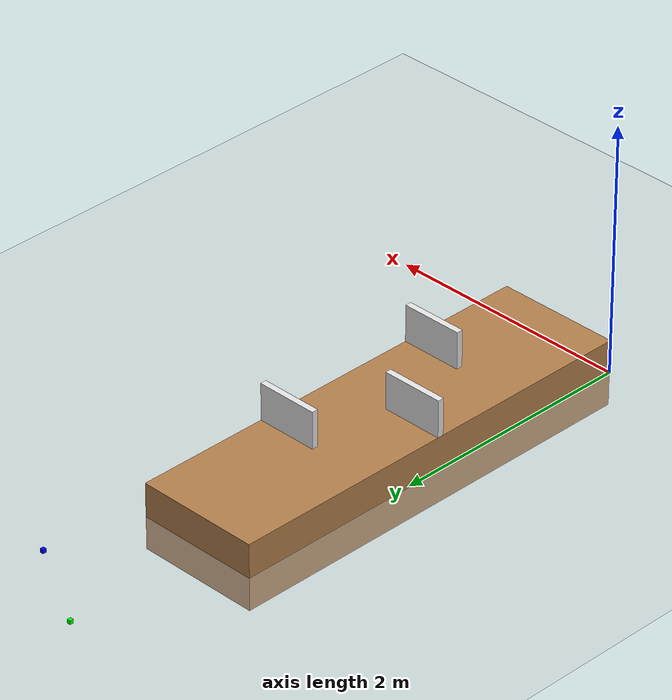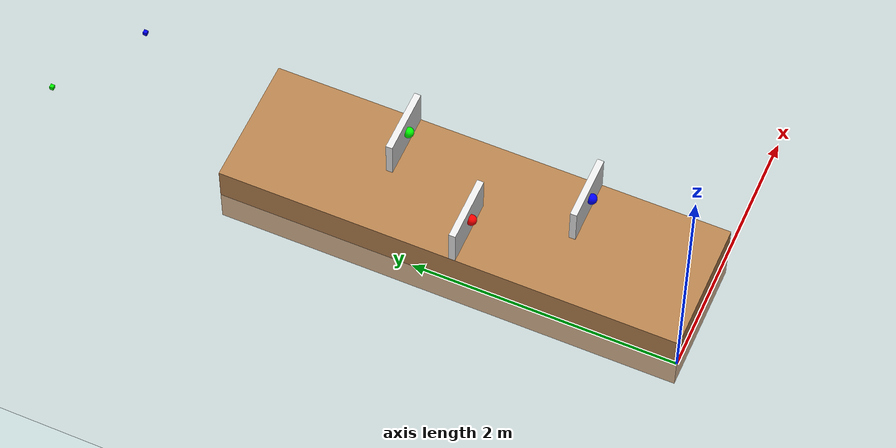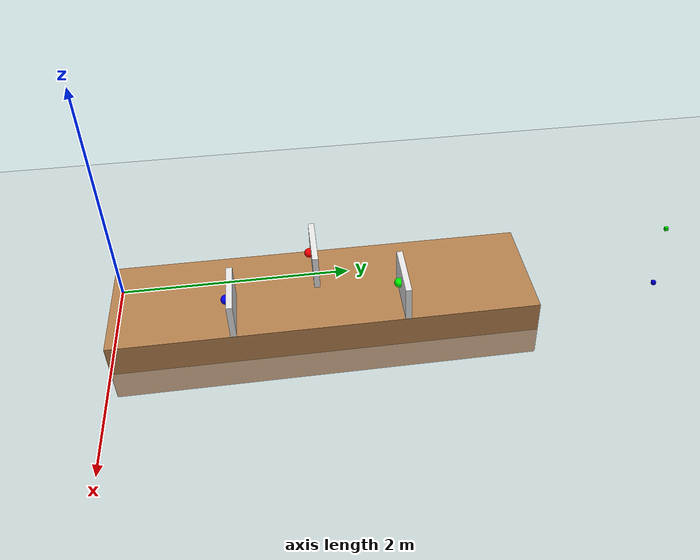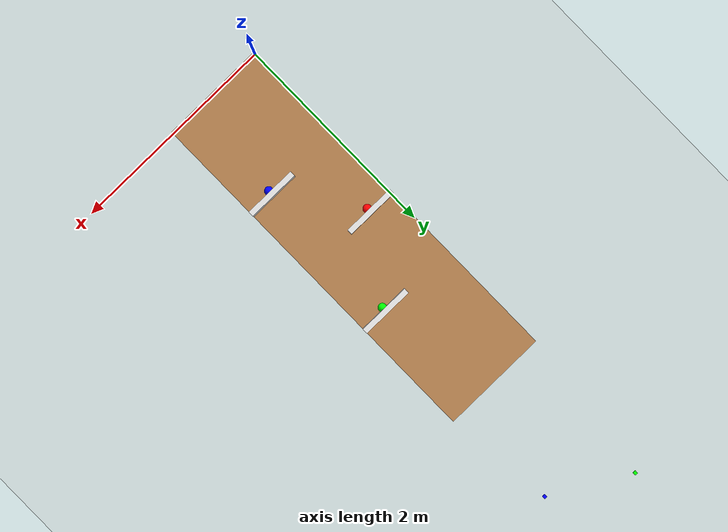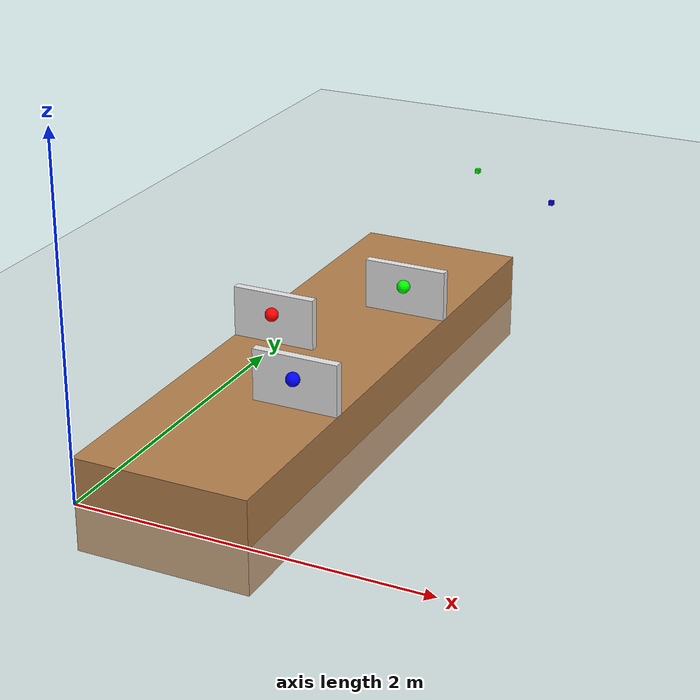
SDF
<sdf version="1.6">
 <world name="default">
  <model name="ground_plane">
   <static>1</static>
   <link name="link">
    <collision name="collision">
     <geometry><plane><normal>0 0 1</normal><size>100 100</size></plane></geometry>
     <surface><friction><ode><mu>100</mu><mu2>50</mu2></ode></friction></surface>
    </collision>
    <visual name="visual">
     <cast_shadows>0</cast_shadows>
     <geometry><plane><normal>0 0 1</normal><size>100 100</size></plane></geometry>
     <material>
      <script><uri>file://media/materials/scripts/gazebo.material</uri><name>Gazebo/Grey</name></script>
     </material>
    </visual>
   </link>
  </model>
  <model name="runway">
   <link name="link">
    <inertial>
     <mass>1</mass>
     <inertia>
      <ixx>0.166667</ixx>
      <ixy>0</ixy>
      <ixz>0</ixz>
      <iyy>0.166667</iyy>
      <iyz>0</iyz>
      <izz>0.166667</izz>
     </inertia>
    </inertial>
    <visual name="ModelPreview_1::link::visual_8">
     <geometry><box><size>1.0 3.5 0.535721</size></box></geometry>
     <material>
      <script>
       <uri>model://wood/materials/scripts</uri>
       <uri>model://wood/materials/textures</uri>
       <name>wood</name>
      </script>
      <ambient>0.855 0.765 0.6 1</ambient>
      <diffuse>0.855 0.765 0.6 1</diffuse>
      <specular>1.0 0.95 0.85 1</specular>
      <emissive>0 0 0 1</emissive>
      <shader type="vertex"><normal_map>__default__</normal_map></shader>
     </material>
    </visual>
    <collision name="collision">
     <geometry><box><size>1.0 3.5 0.535721</size></box></geometry>
     <surface>
      <friction>
       <ode><mu>1</mu><mu2>1</mu2><fdir1>0 0 0</fdir1><slip1>0</slip1><slip2>0</slip2></ode>
       <torsional>
        <coefficient>1</coefficient>
        <patch_radius>0</patch_radius>
        <surface_radius>0</surface_radius>
        <use_patch_radius>1</use_patch_radius>
        <ode><slip>0</slip></ode>
       </torsional>
      </friction>
      <bounce><restitution_coefficient>0</restitution_coefficient><threshold>1e+06</threshold></bounce>
      <contact>
       <collide_without_contact>0</collide_without_contact>
       <collide_without_contact_bitmask>1</collide_without_contact_bitmask>
       <collide_bitmask>1</collide_bitmask>
       <ode>
        <soft_cfm>0</soft_cfm>
        <soft_erp>0.2</soft_erp>
        <kp>1e+13</kp>
        <kd>1</kd>
        <max_vel>0.01</max_vel>
        <min_depth>0</min_depth>
       </ode>
       <bullet>
        <split_impulse>1</split_impulse>
        <split_impulse_penetration_threshold>-0.01</split_impulse_penetration_threshold>
        <soft_cfm>0</soft_cfm>
        <soft_erp>0.2</soft_erp>
        <kp>1e+13</kp>
        <kd>1</kd>
       </bullet>
      </contact>
     </surface>
    </collision>
   </link>
   <static>1</static>
   <pose>0.5 1.75 0 0 -0 0</pose>
  </model>
  <model name="wall">
   <link name="link">
    <inertial>
     <mass>1</mass>
     <inertia>
      <ixx>0.166667</ixx>
      <ixy>0</ixy>
      <ixz>0</ixz>
      <iyy>0.166667</iyy>
      <iyz>0</iyz>
      <izz>0.166667</izz>
     </inertia>
    </inertial>
    <visual name="visual">
     <geometry><box><size>0.50 0.05 0.3</size></box></geometry>
     <material>
      <script>
       <uri>model://wall/materials/scripts</uri>
       <uri>model://wall/materials/textures</uri>
       <name>wall</name>
      </script>
      <ambient>0.9 0.9 0.9 1</ambient>
      <diffuse>0.9 0.9 0.9 1</diffuse>
      <specular>0.5 0.5 0.5 1</specular>
      <emissive>0 0 0 1</emissive>
      <shader type="vertex"><normal_map>__default__</normal_map></shader>
     </material>
    </visual>
    <collision name="collision">
     <geometry><box><size>0.50 0.05 0.3</size></box></geometry>
     <surface>
      <friction>
       <ode><mu>1</mu><mu2>1</mu2><fdir1>0 0 0</fdir1><slip1>0</slip1><slip2>0</slip2></ode>
       <torsional>
        <coefficient>1</coefficient>
        <patch_radius>0</patch_radius>
        <surface_radius>0</surface_radius>
        <use_patch_radius>1</use_patch_radius>
        <ode><slip>0</slip></ode>
       </torsional>
      </friction>
      <bounce><restitution_coefficient>0</restitution_coefficient><threshold>1e+06</threshold></bounce>
      <contact>
       <collide_without_contact>0</collide_without_contact>
       <collide_without_contact_bitmask>1</collide_without_contact_bitmask>
       <collide_bitmask>1</collide_bitmask>
       <ode>
        <soft_cfm>0</soft_cfm>
        <soft_erp>0.2</soft_erp>
        <kp>1e+13</kp>
        <kd>1</kd>
        <max_vel>0.01</max_vel>
        <min_depth>0</min_depth>
       </ode>
       <bullet>
        <split_impulse>1</split_impulse>
        <split_impulse_penetration_threshold>-0.01</split_impulse_penetration_threshold>
        <soft_cfm>0</soft_cfm>
        <soft_erp>0.2</soft_erp>
        <kp>1e+13</kp>
        <kd>1</kd>
       </bullet>
      </contact>
     </surface>
    </collision>
   </link>
   <static>1</static>
   <pose>0.75 1.0 0.4184 0 -0 0</pose>
  </model>
  <model name="wall_0">
   <link name="link">
    <inertial>
     <mass>1</mass>
     <inertia>
      <ixx>0.166667</ixx>
      <ixy>0</ixy>
      <ixz>0</ixz>
      <iyy>0.166667</iyy>
      <iyz>0</iyz>
      <izz>0.166667</izz>
     </inertia>
    </inertial>
    <visual name="visual">
     <geometry><box><size>0.50 0.05 0.3</size></box></geometry>
     <material>
      <script>
       <uri>model://wall/materials/scripts</uri>
       <uri>model://wall/materials/textures</uri>
       <name>wall</name>
      </script>
      <ambient>0.9 0.9 0.9 1</ambient>
      <diffuse>0.9 0.9 0.9 1</diffuse>
      <specular>0.5 0.5 0.5 1</specular>
      <emissive>0 0 0 1</emissive>
      <shader type="vertex"><normal_map>__default__</normal_map></shader>
     </material>
    </visual>
    <collision name="collision">
     <geometry><box><size>0.50 0.05 0.3</size></box></geometry>
     <surface>
      <friction>
       <ode><mu>1</mu><mu2>1</mu2><fdir1>0 0 0</fdir1><slip1>0</slip1><slip2>0</slip2></ode>
       <torsional>
        <coefficient>1</coefficient>
        <patch_radius>0</patch_radius>
        <surface_radius>0</surface_radius>
        <use_patch_radius>1</use_patch_radius>
        <ode><slip>0</slip></ode>
       </torsional>
      </friction>
      <bounce><restitution_coefficient>0</restitution_coefficient><threshold>1e+06</threshold></bounce>
      <contact>
       <collide_without_contact>0</collide_without_contact>
       <collide_without_contact_bitmask>1</collide_without_contact_bitmask>
       <collide_bitmask>1</collide_bitmask>
       <ode>
        <soft_cfm>0</soft_cfm>
        <soft_erp>0.2</soft_erp>
        <kp>1e+13</kp>
        <kd>1</kd>
        <max_vel>0.01</max_vel>
        <min_depth>0</min_depth>
       </ode>
       <bullet>
        <split_impulse>1</split_impulse>
        <split_impulse_penetration_threshold>-0.01</split_impulse_penetration_threshold>
        <soft_cfm>0</soft_cfm>
        <soft_erp>0.2</soft_erp>
        <kp>1e+13</kp>
        <kd>1</kd>
       </bullet>
      </contact>
     </surface>
    </collision>
   </link>
   <static>1</static>
   <pose>0.25 1.7 0.4184 0 -0 0</pose>
  </model>
  <model name="wall_1">
   <link name="link">
    <inertial>
     <mass>1</mass>
     <inertia>
      <ixx>0.166667</ixx>
      <ixy>0</ixy>
      <ixz>0</ixz>
      <iyy>0.166667</iyy>
      <iyz>0</iyz>
      <izz>0.166667</izz>
     </inertia>
    </inertial>
    <visual name="visual">
     <geometry><box><size>0.50 0.05 0.3</size></box></geometry>
     <material>
      <script>
       <uri>model://wall/materials/scripts</uri>
       <uri>model://wall/materials/textures</uri>
       <name>wall</name>
      </script>
      <ambient>0.9 0.9 0.9 1</ambient>
      <diffuse>0.9 0.9 0.9 1</diffuse>
      <specular>0.5 0.5 0.5 1</specular>
      <emissive>0 0 0 1</emissive>
      <shader type="vertex"><normal_map>__default__</normal_map></shader>
     </material>
    </visual>
    <collision name="collision">
     <geometry><box><size>0.50 0.05 0.3</size></box></geometry>
     <surface>
      <friction>
       <ode><mu>1</mu><mu2>1</mu2><fdir1>0 0 0</fdir1><slip1>0</slip1><slip2>0</slip2></ode>
       <torsional>
        <coefficient>1</coefficient>
        <patch_radius>0</patch_radius>
        <surface_radius>0</surface_radius>
        <use_patch_radius>1</use_patch_radius>
        <ode><slip>0</slip></ode>
       </torsional>
      </friction>
      <bounce><restitution_coefficient>0</restitution_coefficient><threshold>1e+06</threshold></bounce>
      <contact>
       <collide_without_contact>0</collide_without_contact>
       <collide_without_contact_bitmask>1</collide_without_contact_bitmask>
       <collide_bitmask>1</collide_bitmask>
       <ode>
        <soft_cfm>0</soft_cfm>
        <soft_erp>0.2</soft_erp>
        <kp>1e+13</kp>
        <kd>1</kd>
        <max_vel>0.01</max_vel>
        <min_depth>0</min_depth>
       </ode>
       <bullet>
        <split_impulse>1</split_impulse>
        <split_impulse_penetration_threshold>-0.01</split_impulse_penetration_threshold>
        <soft_cfm>0</soft_cfm>
        <soft_erp>0.2</soft_erp>
        <kp>1e+13</kp>
        <kd>1</kd>
       </bullet>
      </contact>
     </surface>
    </collision>
   </link>
   <static>1</static>
   <pose>0.75 2.4 0.4184 0 -0 0</pose>
  </model>
  <model name="red_ballon">
   <link name="link">
    <inertial>
     <mass>1</mass>
     <inertia><ixx>0.1</ixx><ixy>0</ixy><ixz>0</ixz><iyy>0.1</iyy><iyz>0</iyz><izz>0.1</izz></inertia>
    </inertial>
    <visual name="visual">
     <geometry><sphere><radius>0.04</radius></sphere></geometry>
     <material>
      <script><name>Gazebo/Grey</name><uri>file://media/materials/scripts/gazebo.material</uri></script>
      <ambient>0.9 0.4 0.2 1</ambient>
      <diffuse>1 0 0 1</diffuse>
      <specular>0.9 0.8 0.7 1</specular>
      <emissive>0 0 0 1</emissive>
      <shader type="vertex"><normal_map>__default__</normal_map></shader>
     </material>
    </visual>
    <collision name="collision">
     <geometry><sphere><radius>0.04</radius></sphere></geometry>
     <surface>
      <friction>
       <ode><mu>1</mu><mu2>1</mu2><fdir1>0 0 0</fdir1><slip1>0</slip1><slip2>0</slip2></ode>
       <torsional>
        <coefficient>1</coefficient>
        <patch_radius>0</patch_radius>
        <surface_radius>0</surface_radius>
        <use_patch_radius>1</use_patch_radius>
        <ode><slip>0</slip></ode>
       </torsional>
      </friction>
      <bounce><restitution_coefficient>0</restitution_coefficient><threshold>1e+06</threshold></bounce>
      <contact>
       <collide_without_contact>0</collide_without_contact>
       <collide_without_contact_bitmask>1</collide_without_contact_bitmask>
       <collide_bitmask>1</collide_bitmask>
       <ode>
        <soft_cfm>0</soft_cfm>
        <soft_erp>0.2</soft_erp>
        <kp>1e+13</kp>
        <kd>1</kd>
        <max_vel>0.01</max_vel>
        <min_depth>0</min_depth>
       </ode>
       <bullet>
        <split_impulse>1</split_impulse>
        <split_impulse_penetration_threshold>-0.01</split_impulse_penetration_threshold>
        <soft_cfm>0</soft_cfm>
        <soft_erp>0.2</soft_erp>
        <kp>1e+13</kp>
        <kd>1</kd>
       </bullet>
      </contact>
     </surface>
    </collision>
   </link>
   <static>1</static>
   <pose>0.25 1.66 0.446193 0 -0 0</pose>
  </model>
  <model name="green_ballon">
   <link name="link">
    <inertial>
     <mass>1</mass>
     <inertia><ixx>0.1</ixx><ixy>0</ixy><ixz>0</ixz><iyy>0.1</iyy><iyz>0</iyz><izz>0.1</izz></inertia>
    </inertial>
    <visual name="visual">
     <geometry><sphere><radius>0.04</radius></sphere></geometry>
     <material>
      <script><name>Gazebo/Grey</name><uri>file://media/materials/scripts/gazebo.material</uri></script>
      <ambient>0.4 0.9 0.4 1</ambient>
      <diffuse>0 1 0 1</diffuse>
      <specular>0.7 0.9 0.7 1</specular>
      <emissive>0 0 0 1</emissive>
      <shader type="vertex"><normal_map>__default__</normal_map></shader>
     </material>
    </visual>
   </link>
   <static>1</static>
   <pose>0.75 2.36 0.446193 0 -0 0</pose>
  </model>
  <model name="blue_ballon">
   <link name="link">
    <inertial>
     <mass>1</mass>
     <inertia><ixx>0.1</ixx><ixy>0</ixy><ixz>0</ixz><iyy>0.1</iyy><iyz>0</iyz><izz>0.1</izz></inertia>
    </inertial>
    <visual name="visual">
     <geometry><sphere><radius>0.04</radius></sphere></geometry>
     <material>
      <script><name>Gazebo/Grey</name><uri>file://media/materials/scripts/gazebo.material</uri></script>
      <ambient>0.0 0.3 0.9 1</ambient>
      <diffuse>0 0 1 1</diffuse>
      <specular>0.5 0.5 0.5 1</specular>
      <emissive>0 0 0 1</emissive>
      <shader type="vertex"><normal_map>__default__</normal_map></shader>
     </material>
    </visual>
   </link>
   <static>1</static>
   <pose>0.75 0.960024 0.446193 0 -0 0</pose>
  </model>
  <model name="blue_box">
   <link name="link">
    <inertial>
     <mass>0.01</mass>
     <inertia>
      <ixx>0.00001</ixx>
      <ixy>0.00000001</ixy>
      <ixz>0.00000001</ixz>
      <iyy>0.00001</iyy>
      <iyz>0.00000001</iyz>
      <izz>0.00001</izz>
     </inertia>
    </inertial>
    <collision name="collision">
     <geometry><box><size>0.03 0.03 0.03</size></box></geometry>
     <surface><friction><ode><mu>100000.0</mu><mu2>100000.0</mu2></ode></friction></surface>
    </collision>
    <visual name="visual">
     <geometry><box><size>0.03 0.03 0.03</size></box></geometry>
     <material>
      <script><name>Gazebo/Grey</name><uri>file://media/materials/scripts/gazebo.material</uri></script>
      <ambient>0.6 0.6 0.9 1</ambient>
      <diffuse>0 0 1 1</diffuse>
      <specular>0.5 0.5 0.5 1</specular>
      <emissive>0 0 0 1</emissive>
      <shader type="vertex"><normal_map>__default__</normal_map></shader>
     </material>
    </visual>
   </link>
   <static>0</static>
   <pose>0.885 4.515 0.283 0 -0 0</pose>
  </model>
  <model name="green_box">
   <link name="link">
    <inertial>
     <mass>0.01</mass>
     <inertia>
      <ixx>0.00001</ixx>
      <ixy>0.00000001</ixy>
      <ixz>0.00000001</ixz>
      <iyy>0.00001</iyy>
      <iyz>0.00000001</iyz>
      <izz>0.00001</izz>
     </inertia>
    </inertial>
    <collision name="collision">
     <geometry><box><size>0.03 0.03 0.03</size></box></geometry>
     <surface><friction><ode><mu>100000.0</mu><mu2>100000.0</mu2></ode></friction></surface>
    </collision>
    <visual name="visual">
     <geometry><box><size>0.03 0.03 0.03</size></box></geometry>
     <material>
      <script><name>Gazebo/Grey</name><uri>file://media/materials/scripts/gazebo.material</uri></script>
      <ambient>0.6 0.9 0.6 1</ambient>
      <diffuse>0 1 0 1</diffuse>
      <specular>0.5 0.5 0.5 1</specular>
      <emissive>0 0 0 1</emissive>
      <shader type="vertex"><normal_map>__default__</normal_map></shader>
     </material>
    </visual>
   </link>
   <static>0</static>
   <pose>0.18 4.915 0.283 0 -0 0</pose>
  </model>
 </world>
</sdf>
